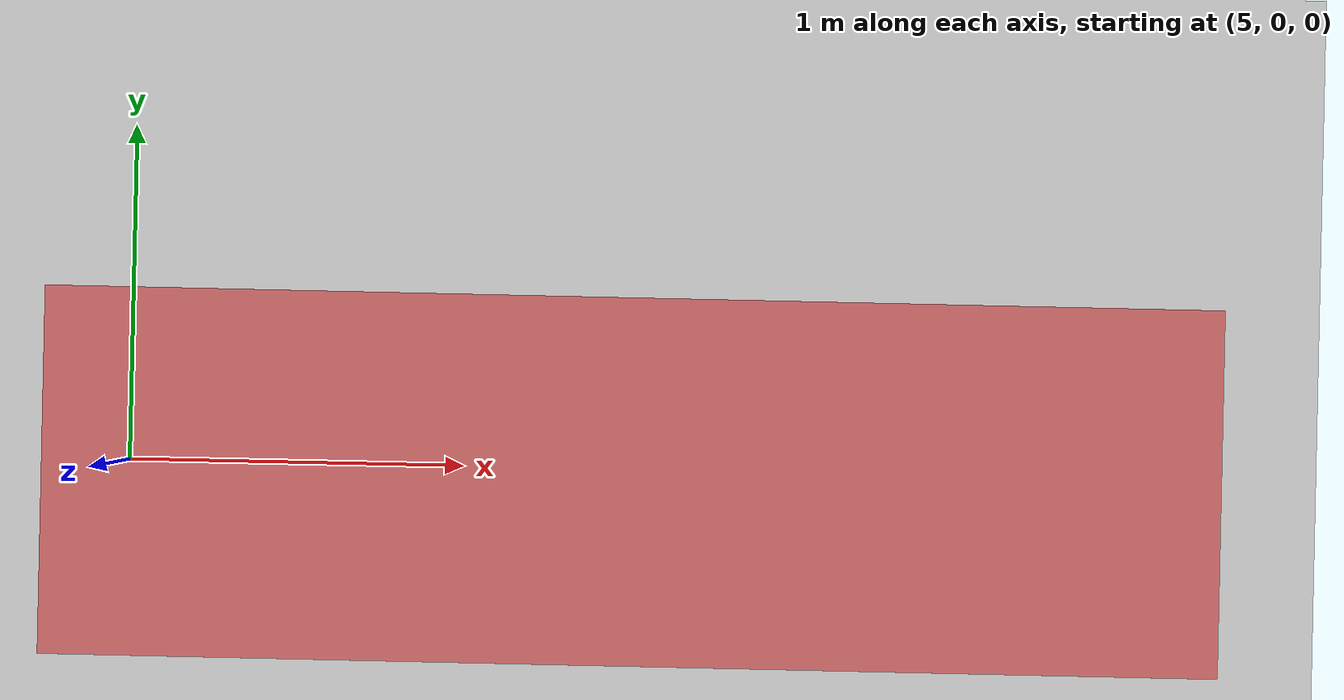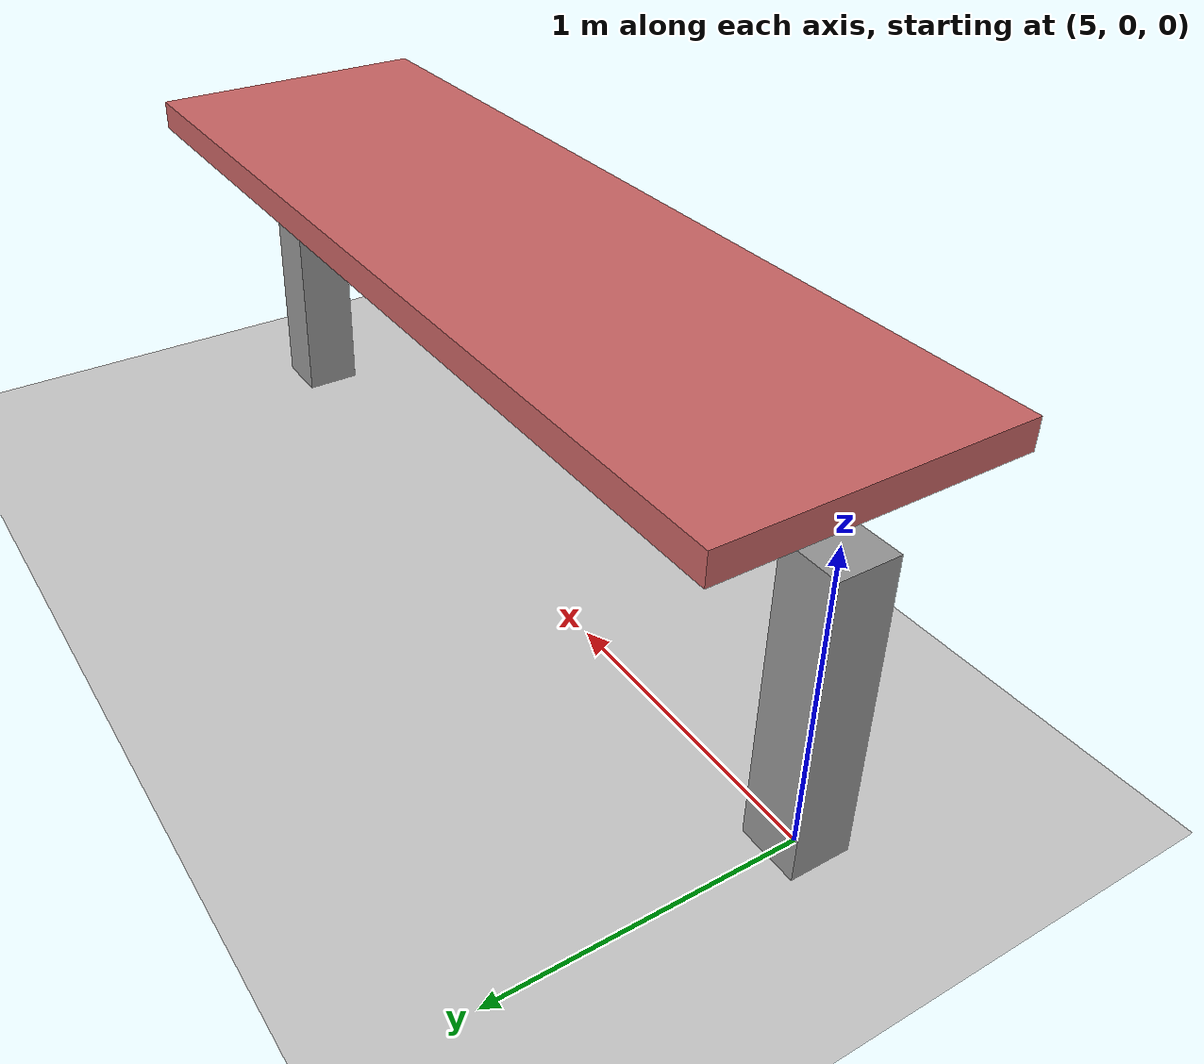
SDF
<?xml version="1.0" ?>
<sdf version="1.8">
  <world name="default">
    <!-- Physics engine configuration -->
    <physics type="ode">
      <max_step_size>0.005</max_step_size>
      <real_time_factor>1</real_time_factor>
    </physics>

    <spherical_coordinates>
      <surface_model>EARTH_WGS84</surface_model>
      <latitude_deg>32.0853</latitude_deg>
      <longitude_deg>34.7818</longitude_deg>
      <elevation>0.0</elevation>
      <heading_deg>0.0</heading_deg>
    </spherical_coordinates>

    <!-- Lighting -->
    <light type="directional" name="sun">
      <cast_shadows>true</cast_shadows>
      <pose>0 0 10 0 0 0</pose>
      <diffuse>0.8 0.8 0.8 1</diffuse>
      <specular>0.2 0.2 0.2 1</specular>
      <attenuation>
        <range>1000</range>
        <constant>0.9</constant>
        <linear>0.01</linear>
        <quadratic>0.001</quadratic>
      </attenuation>
      <direction>-0.5 0.5 -1</direction>
    </light>

    <!-- Ground plane -->
    <model name="ground_plane">
      <static>true</static>
      <link name="link">
        <collision name="collision">
          <geometry>
            <plane>
              <normal>0 0 1</normal>
              <size>100 100</size>
            </plane>
          </geometry>
          <surface>
            <friction>
              <ode>
                <mu>2.0</mu>
                <mu2>2.0</mu2>
                <slip1>0.0</slip1>
                <slip2>0.0</slip2>
              </ode>
            </friction>
            <contact>
              <ode>
                <kp>1000000.0</kp>
                <kd>100.0</kd>
              </ode>
            </contact>
          </surface>
        </collision>
        <visual name="visual">
          <geometry>
            <plane>
              <normal>0 0 1</normal>
              <size>100 100</size>
            </plane>
          </geometry>
          <material>
            <ambient>0.8 0.8 0.8 1</ambient>
            <diffuse>0.8 0.8 0.8 1</diffuse>
            <specular>0.8 0.8 0.8 1</specular>
          </material>
        </visual>
      </link>
    </model>

    <!-- Simple depot structure (optional demo structure) -->
    <model name="depot">
      <static>true</static>
      <pose>5 0 0 0 0 0</pose>

      <!-- Depot posts -->
      <link name="post_1">
        <pose>0 0 0.5 0 0 0</pose>
        <collision name="collision">
          <geometry>
            <box>
              <size>0.2 0.2 1</size>
            </box>
          </geometry>
        </collision>
        <visual name="visual">
          <geometry>
            <box>
              <size>0.2 0.2 1</size>
            </box>
          </geometry>
          <material>
            <ambient>0.5 0.5 0.5 1</ambient>
            <diffuse>0.6 0.6 0.6 1</diffuse>
          </material>
        </visual>
      </link>

      <link name="post_2">
        <pose>3 0 0.5 0 0 0</pose>
        <collision name="collision">
          <geometry>
            <box>
              <size>0.2 0.2 1</size>
            </box>
          </geometry>
        </collision>
        <visual name="visual">
          <geometry>
            <box>
              <size>0.2 0.2 1</size>
            </box>
          </geometry>
          <material>
            <ambient>0.5 0.5 0.5 1</ambient>
            <diffuse>0.6 0.6 0.6 1</diffuse>
          </material>
        </visual>
      </link>

      <!-- Depot roof -->
      <link name="roof">
        <pose>1.5 0 1.2 0 0 0</pose>
        <collision name="collision">
          <geometry>
            <box>
              <size>3.2 1 0.1</size>
            </box>
          </geometry>
        </collision>
        <visual name="visual">
          <geometry>
            <box>
              <size>3.2 1 0.1</size>
            </box>
          </geometry>
          <material>
            <ambient>0.7 0.3 0.3 1</ambient>
            <diffuse>0.8 0.4 0.4 1</diffuse>
          </material>
        </visual>
      </link>

      <joint name="post_1_joint" type="fixed">
        <parent>world</parent>
        <child>post_1</child>
      </joint>
      <joint name="post_2_joint" type="fixed">
        <parent>world</parent>
        <child>post_2</child>
      </joint>
      <joint name="roof_joint" type="fixed">
        <parent>post_1</parent>
        <child>roof</child>
      </joint>
    </model>

    <!-- Grid visualization -->
    <gui fullscreen="0">
      <camera>
        <pose>0 0 10 0 1.57 0</pose>
      </camera>
    </gui>
  </world>
</sdf>
